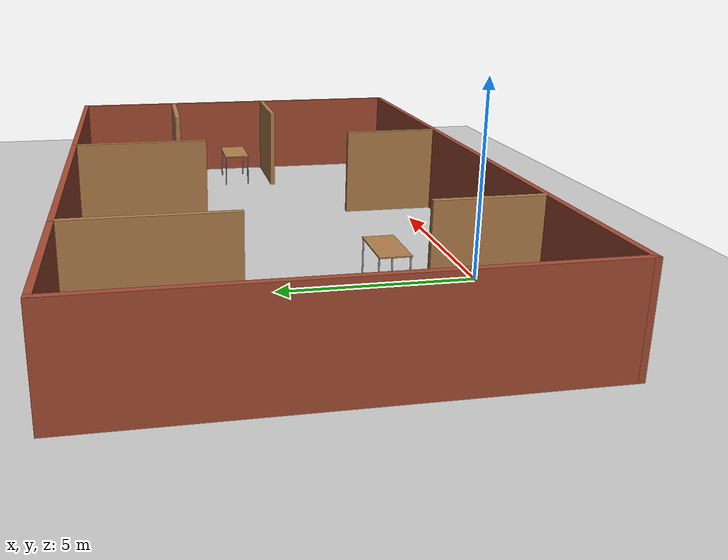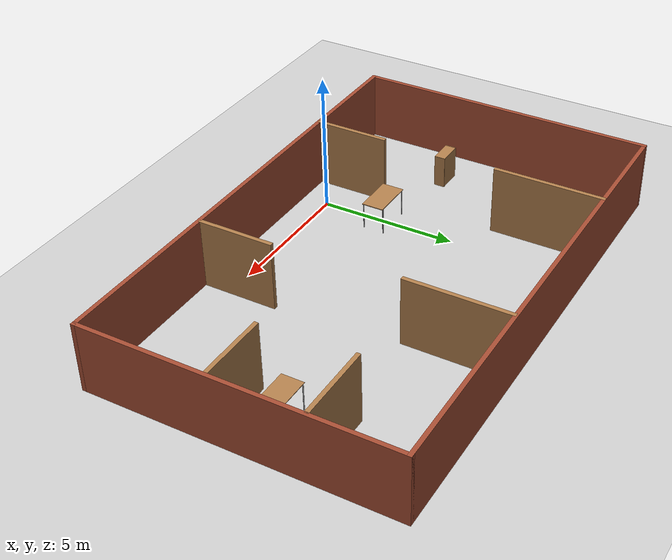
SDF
<sdf version="1.6">
 <world name="default">
  <light name="sun" type="directional">
   <pose>0 0 10 0 -0 0</pose>
   <diffuse>0.8 0.8 0.8 1</diffuse>
   <specular>0.2 0.2 0.2 1</specular>
   <attenuation>
    <range>1000</range>
    <constant>0.9</constant>
    <linear>0.01</linear>
    <quadratic>0.001</quadratic>
   </attenuation>
   <direction>-0.5 0.1 -0.9</direction>
  </light>
  <model name="ground_plane">
   <static>1</static>
   <link name="link">
    <collision name="collision">
     <geometry><plane><normal>0 0 1</normal><size>100 100</size></plane></geometry>
     <surface>
      <contact><collide_bitmask>65535</collide_bitmask></contact>
      <friction><ode><mu>100</mu><mu2>50</mu2></ode></friction>
     </surface>
    </collision>
    <visual name="visual">
     <cast_shadows>0</cast_shadows>
     <geometry><plane><normal>0 0 1</normal><size>100 100</size></plane></geometry>
     <material>
      <script><uri>file://media/materials/scripts/gazebo.material</uri><name>Gazebo/Grey</name></script>
     </material>
    </visual>
   </link>
  </model>
  <gravity>0 0 -9.8</gravity>
  <magnetic_field>6e-06 2.3e-05 -4.2e-05</magnetic_field>
  <atmosphere type="adiabatic"/>
  <physics name="default_physics" default="0" type="ode">
   <max_step_size>0.001</max_step_size>
   <real_time_factor>1</real_time_factor>
   <real_time_update_rate>1000</real_time_update_rate>
  </physics>
  <scene><ambient>0.4 0.4 0.4 1</ambient><background>0.7 0.7 0.7 1</background><shadows>1</shadows></scene>
  <spherical_coordinates>
   <surface_model>EARTH_WGS84</surface_model>
   <latitude_deg>0</latitude_deg>
   <longitude_deg>0</longitude_deg>
   <elevation>0</elevation>
   <heading_deg>0</heading_deg>
  </spherical_coordinates>
  <model name="world">
   <pose>3.375 4.405 0 0 -0 0</pose>
   <link name="Wall_0">
    <collision name="Wall_0_Collision">
     <geometry><box><size>11 0.15 2.5</size></box></geometry>
     <pose>0 0 1.25 0 -0 0</pose>
    </collision>
    <visual name="Wall_0_Visual">
     <pose>0 0 1.25 0 -0 0</pose>
     <geometry><box><size>11 0.15 2.5</size></box></geometry>
     <material>
      <script><uri>file://media/materials/scripts/gazebo.material</uri><name>Gazebo/Bricks</name></script>
      <ambient>1 1 1 1</ambient>
     </material>
     <meta><layer>0</layer></meta>
    </visual>
    <pose>-8.675 0 0 0 -0 1.5708</pose>
   </link>
   <link name="Wall_1">
    <collision name="Wall_1_Collision">
     <geometry><box><size>17.5 0.15 2.5</size></box></geometry>
     <pose>0 0 1.25 0 -0 0</pose>
    </collision>
    <visual name="Wall_1_Visual">
     <pose>0 0 1.25 0 -0 0</pose>
     <geometry><box><size>17.5 0.15 2.5</size></box></geometry>
     <material>
      <script><uri>file://media/materials/scripts/gazebo.material</uri><name>Gazebo/Bricks</name></script>
      <ambient>1 1 1 1</ambient>
     </material>
     <meta><layer>0</layer></meta>
    </visual>
    <pose>0 5.425 0 0 -0 0</pose>
   </link>
   <link name="Wall_13">
    <collision name="Wall_13_Collision">
     <geometry><box><size>4 0.15 2.5</size></box></geometry>
     <pose>0 0 1.25 0 -0 0</pose>
    </collision>
    <visual name="Wall_13_Visual">
     <pose>0 0 1.25 0 -0 0</pose>
     <geometry><box><size>4 0.15 2.5</size></box></geometry>
     <material>
      <script><uri>file://media/materials/scripts/gazebo.material</uri><name>Gazebo/Wood</name></script>
      <ambient>1 1 1 1</ambient>
     </material>
     <meta><layer>0</layer></meta>
    </visual>
    <pose>-4.76685 3.48307 0 0 -0 -1.5708</pose>
   </link>
   <link name="Wall_15">
    <collision name="Wall_15_Collision">
     <geometry><box><size>3.75 0.15 2.5</size></box></geometry>
     <pose>0 0 1.25 0 -0 0</pose>
    </collision>
    <visual name="Wall_15_Visual">
     <pose>0 0 1.25 0 -0 0</pose>
     <geometry><box><size>3.75 0.15 2.5</size></box></geometry>
     <material>
      <script><uri>file://media/materials/scripts/gazebo.material</uri><name>Gazebo/Wood</name></script>
      <ambient>1 1 1 1</ambient>
     </material>
     <meta><layer>0</layer></meta>
    </visual>
    <pose>2.24006 3.56286 0 0 -0 -1.5708</pose>
   </link>
   <link name="Wall_22">
    <collision name="Wall_22_Collision">
     <geometry><box><size>2.5 0.15 2.5</size></box></geometry>
     <pose>0 0 1.25 0 -0 0</pose>
    </collision>
    <visual name="Wall_22_Visual">
     <pose>0 0 1.25 0 -0 0</pose>
     <geometry><box><size>2.5 0.15 2.5</size></box></geometry>
     <material>
      <script><uri>file://media/materials/scripts/gazebo.material</uri><name>Gazebo/Wood</name></script>
      <ambient>1 1 1 1</ambient>
     </material>
     <meta><layer>0</layer></meta>
    </visual>
    <pose>7.3639 -0.914631 0 0 -0 0</pose>
   </link>
   <link name="Wall_24">
    <collision name="Wall_24_Collision">
     <geometry><box><size>2.75 0.15 2.5</size></box></geometry>
     <pose>0 0 1.25 0 -0 0</pose>
    </collision>
    <visual name="Wall_24_Visual">
     <pose>0 0 1.25 0 -0 0</pose>
     <geometry><box><size>2.75 0.15 2.5</size></box></geometry>
     <material>
      <script><uri>file://media/materials/scripts/gazebo.material</uri><name>Gazebo/Wood</name></script>
      <ambient>1 1 1 1</ambient>
     </material>
     <meta><layer>0</layer></meta>
    </visual>
    <pose>7.26597 2.32524 0 0 -0 0</pose>
   </link>
   <link name="Wall_4">
    <collision name="Wall_4_Collision">
     <geometry><box><size>11 0.15 2.5</size></box></geometry>
     <pose>0 0 1.25 0 -0 0</pose>
    </collision>
    <visual name="Wall_4_Visual">
     <pose>0 0 1.25 0 -0 0</pose>
     <geometry><box><size>11 0.15 2.5</size></box></geometry>
     <material>
      <script><uri>file://media/materials/scripts/gazebo.material</uri><name>Gazebo/Bricks</name></script>
      <ambient>1 1 1 1</ambient>
     </material>
     <meta><layer>0</layer></meta>
    </visual>
    <pose>8.675 0 0 0 -0 -1.5708</pose>
   </link>
   <link name="Wall_5">
    <collision name="Wall_5_Collision">
     <geometry><box><size>17.5 0.15 2.5</size></box></geometry>
     <pose>0 0 1.25 0 -0 0</pose>
    </collision>
    <visual name="Wall_5_Visual">
     <pose>0 0 1.25 0 -0 0</pose>
     <geometry><box><size>17.5 0.15 2.5</size></box></geometry>
     <material>
      <script><uri>file://media/materials/scripts/gazebo.material</uri><name>Gazebo/Bricks</name></script>
      <ambient>1 1 1 1</ambient>
     </material>
     <meta><layer>0</layer></meta>
    </visual>
    <pose>0 -5.425 0 0 -0 3.14159</pose>
   </link>
   <link name="Wall_7">
    <collision name="Wall_7_Collision">
     <geometry><box><size>2.75 0.15 2.5</size></box></geometry>
     <pose>0 0 1.25 0 -0 0</pose>
    </collision>
    <visual name="Wall_7_Visual">
     <pose>0 0 1.25 0 -0 0</pose>
     <geometry><box><size>2.75 0.15 2.5</size></box></geometry>
     <material>
      <script><uri>file://media/materials/scripts/gazebo.material</uri><name>Gazebo/Wood</name></script>
      <ambient>1 1 1 1</ambient>
     </material>
     <meta><layer>0</layer></meta>
    </visual>
    <pose>-4.66729 -4.07742 0 0 -0 1.5708</pose>
   </link>
   <link name="Wall_9">
    <collision name="Wall_9_Collision">
     <geometry><box><size>2.75 0.15 2.5</size></box></geometry>
     <pose>0 0 1.25 0 -0 0</pose>
    </collision>
    <visual name="Wall_9_Visual">
     <pose>0 0 1.25 0 -0 0</pose>
     <geometry><box><size>2.75 0.15 2.5</size></box></geometry>
     <material>
      <script><uri>file://media/materials/scripts/gazebo.material</uri><name>Gazebo/Wood</name></script>
      <ambient>1 1 1 1</ambient>
     </material>
     <meta><layer>0</layer></meta>
    </visual>
    <pose>2.66162 -4.03833 0 0 -0 1.5708</pose>
   </link>
   <static>1</static>
  </model>
  <model name="bookshelf">
   <static>1</static>
   <link name="link">
    <inertial><mass>1</mass></inertial>
    <collision name="back">
     <pose>0 0.005 0.6 0 -0 0</pose>
     <geometry><box><size>0.9 0.01 1.2</size></box></geometry>
    </collision>
    <visual name="visual1">
     <pose>0 0.005 0.6 0 -0 0</pose>
     <geometry><box><size>0.9 0.01 1.2</size></box></geometry>
     <material>
      <script><uri>file://media/materials/scripts/gazebo.material</uri><name>Gazebo/Wood</name></script>
     </material>
    </visual>
    <collision name="left_side">
     <pose>0.45 -0.195 0.6 0 -0 0</pose>
     <geometry><box><size>0.02 0.4 1.2</size></box></geometry>
    </collision>
    <visual name="visual2">
     <pose>0.45 -0.195 0.6 0 -0 0</pose>
     <geometry><box><size>0.02 0.4 1.2</size></box></geometry>
     <material>
      <script><uri>file://media/materials/scripts/gazebo.material</uri><name>Gazebo/Wood</name></script>
     </material>
    </visual>
    <collision name="right_side">
     <pose>-0.45 -0.195 0.6 0 -0 0</pose>
     <geometry><box><size>0.02 0.4 1.2</size></box></geometry>
    </collision>
    <visual name="visual3">
     <pose>-0.45 -0.195 0.6 0 -0 0</pose>
     <geometry><box><size>0.02 0.4 1.2</size></box></geometry>
     <material>
      <script><uri>file://media/materials/scripts/gazebo.material</uri><name>Gazebo/Wood</name></script>
     </material>
    </visual>
    <collision name="bottom">
     <pose>0 -0.195 0.03 0 -0 0</pose>
     <geometry><box><size>0.88 0.4 0.06</size></box></geometry>
    </collision>
    <visual name="visual4">
     <pose>0 -0.195 0.03 0 -0 0</pose>
     <geometry><box><size>0.88 0.4 0.06</size></box></geometry>
     <material>
      <script><uri>file://media/materials/scripts/gazebo.material</uri><name>Gazebo/Wood</name></script>
     </material>
    </visual>
    <collision name="top">
     <pose>0 -0.195 1.19 0 -0 0</pose>
     <geometry><box><size>0.88 0.4 0.02</size></box></geometry>
    </collision>
    <visual name="visual5">
     <pose>0 -0.195 1.19 0 -0 0</pose>
     <geometry><box><size>0.88 0.4 0.02</size></box></geometry>
     <material>
      <script><uri>file://media/materials/scripts/gazebo.material</uri><name>Gazebo/Wood</name></script>
     </material>
    </visual>
    <collision name="low_shelf">
     <pose>0 -0.195 0.43 0 -0 0</pose>
     <geometry><box><size>0.88 0.4 0.02</size></box></geometry>
    </collision>
    <visual name="visual6">
     <pose>0 -0.195 0.43 0 -0 0</pose>
     <geometry><box><size>0.88 0.4 0.02</size></box></geometry>
     <material>
      <script><uri>file://media/materials/scripts/gazebo.material</uri><name>Gazebo/Wood</name></script>
     </material>
    </visual>
    <collision name="high_shelf">
     <pose>0 -0.195 0.8 0 -0 0</pose>
     <geometry><box><size>0.88 0.4 0.02</size></box></geometry>
    </collision>
    <visual name="visual7">
     <pose>0 -0.195 0.8 0 -0 0</pose>
     <geometry><box><size>0.88 0.4 0.02</size></box></geometry>
     <material>
      <script><uri>file://media/materials/scripts/gazebo.material</uri><name>Gazebo/Wood</name></script>
     </material>
    </visual>
   </link>
   <pose>-3.52163 3.17853 0 0 -0 0</pose>
  </model>
  <model name="table">
   <static>1</static>
   <link name="link">
    <collision name="surface">
     <pose>0 0 1 0 -0 0</pose>
     <geometry><box><size>1.5 0.8 0.03</size></box></geometry>
     <surface><friction><ode><mu>0.6</mu><mu2>0.6</mu2></ode></friction></surface>
    </collision>
    <visual name="visual1">
     <pose>0 0 1 0 -0 0</pose>
     <geometry><box><size>1.5 0.8 0.03</size></box></geometry>
     <material>
      <script><uri>file://media/materials/scripts/gazebo.material</uri><name>Gazebo/Wood</name></script>
     </material>
    </visual>
    <collision name="front_left_leg">
     <pose>0.68 0.38 0.5 0 -0 0</pose>
     <geometry><cylinder><radius>0.02</radius><length>1</length></cylinder></geometry>
    </collision>
    <visual name="front_left_leg">
     <pose>0.68 0.38 0.5 0 -0 0</pose>
     <geometry><cylinder><radius>0.02</radius><length>1</length></cylinder></geometry>
     <material>
      <script><uri>file://media/materials/scripts/gazebo.material</uri><name>Gazebo/Grey</name></script>
     </material>
    </visual>
    <collision name="front_right_leg">
     <pose>0.68 -0.38 0.5 0 -0 0</pose>
     <geometry><cylinder><radius>0.02</radius><length>1</length></cylinder></geometry>
    </collision>
    <visual name="front_right_leg">
     <pose>0.68 -0.38 0.5 0 -0 0</pose>
     <geometry><cylinder><radius>0.02</radius><length>1</length></cylinder></geometry>
     <material>
      <script><uri>file://media/materials/scripts/gazebo.material</uri><name>Gazebo/Grey</name></script>
     </material>
    </visual>
    <collision name="back_right_leg">
     <pose>-0.68 -0.38 0.5 0 -0 0</pose>
     <geometry><cylinder><radius>0.02</radius><length>1</length></cylinder></geometry>
    </collision>
    <visual name="back_right_leg">
     <pose>-0.68 -0.38 0.5 0 -0 0</pose>
     <geometry><cylinder><radius>0.02</radius><length>1</length></cylinder></geometry>
     <material>
      <script><uri>file://media/materials/scripts/gazebo.material</uri><name>Gazebo/Grey</name></script>
     </material>
    </visual>
    <collision name="back_left_leg">
     <pose>-0.68 0.38 0.5 0 -0 0</pose>
     <geometry><cylinder><radius>0.02</radius><length>1</length></cylinder></geometry>
    </collision>
    <visual name="back_left_leg">
     <pose>-0.68 0.38 0.5 0 -0 0</pose>
     <geometry><cylinder><radius>0.02</radius><length>1</length></cylinder></geometry>
     <material>
      <script><uri>file://media/materials/scripts/gazebo.material</uri><name>Gazebo/Grey</name></script>
     </material>
    </visual>
   </link>
   <pose>10.3637 4.71922 0 0 -0 0</pose>
  </model>
  <model name="table_0">
   <static>1</static>
   <link name="link">
    <collision name="surface">
     <pose>0 0 1 0 -0 0</pose>
     <geometry><box><size>1.5 0.8 0.03</size></box></geometry>
     <surface><friction><ode><mu>0.6</mu><mu2>0.6</mu2></ode></friction></surface>
    </collision>
    <visual name="visual1">
     <pose>0 0 1 0 -0 0</pose>
     <geometry><box><size>1.5 0.8 0.03</size></box></geometry>
     <material>
      <script><uri>file://media/materials/scripts/gazebo.material</uri><name>Gazebo/Wood</name></script>
     </material>
    </visual>
    <collision name="front_left_leg">
     <pose>0.68 0.38 0.5 0 -0 0</pose>
     <geometry><cylinder><radius>0.02</radius><length>1</length></cylinder></geometry>
    </collision>
    <visual name="front_left_leg">
     <pose>0.68 0.38 0.5 0 -0 0</pose>
     <geometry><cylinder><radius>0.02</radius><length>1</length></cylinder></geometry>
     <material>
      <script><uri>file://media/materials/scripts/gazebo.material</uri><name>Gazebo/Grey</name></script>
     </material>
    </visual>
    <collision name="front_right_leg">
     <pose>0.68 -0.38 0.5 0 -0 0</pose>
     <geometry><cylinder><radius>0.02</radius><length>1</length></cylinder></geometry>
    </collision>
    <visual name="front_right_leg">
     <pose>0.68 -0.38 0.5 0 -0 0</pose>
     <geometry><cylinder><radius>0.02</radius><length>1</length></cylinder></geometry>
     <material>
      <script><uri>file://media/materials/scripts/gazebo.material</uri><name>Gazebo/Grey</name></script>
     </material>
    </visual>
    <collision name="back_right_leg">
     <pose>-0.68 -0.38 0.5 0 -0 0</pose>
     <geometry><cylinder><radius>0.02</radius><length>1</length></cylinder></geometry>
    </collision>
    <visual name="back_right_leg">
     <pose>-0.68 -0.38 0.5 0 -0 0</pose>
     <geometry><cylinder><radius>0.02</radius><length>1</length></cylinder></geometry>
     <material>
      <script><uri>file://media/materials/scripts/gazebo.material</uri><name>Gazebo/Grey</name></script>
     </material>
    </visual>
    <collision name="back_left_leg">
     <pose>-0.68 0.38 0.5 0 -0 0</pose>
     <geometry><cylinder><radius>0.02</radius><length>1</length></cylinder></geometry>
    </collision>
    <visual name="back_left_leg">
     <pose>-0.68 0.38 0.5 0 -0 0</pose>
     <geometry><cylinder><radius>0.02</radius><length>1</length></cylinder></geometry>
     <material>
      <script><uri>file://media/materials/scripts/gazebo.material</uri><name>Gazebo/Grey</name></script>
     </material>
    </visual>
   </link>
   <pose>-0.029075 2.30228 0 0 -0 0</pose>
  </model>
 </world>
</sdf>
